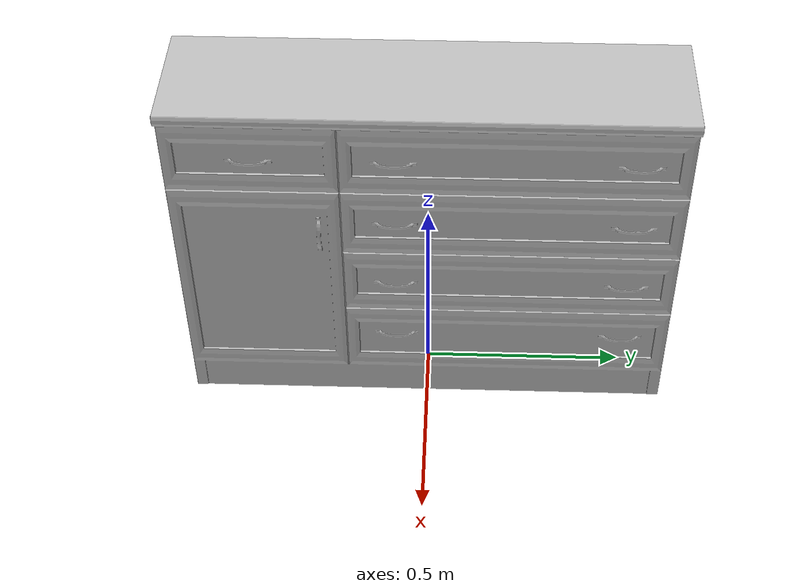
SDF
<?xml version='1.0'?>
<sdf version='1.4'>
  <model name='129'>
    <pose>0 0 0 0 0 0</pose>
    <static>true</static>
    <link name='link'>
      <collision name='collision'>
        <pose>0 0 0 0 0 0</pose>
        <geometry>
          <box>
            <size>0.304375 1.2 2</size>
          </box>
        </geometry>
      </collision>
      <visual name='visual'>
        <pose>0 0 0 0 0 0</pose>
        <geometry>
          <mesh><uri>model://129/129.dae</uri></mesh>
        </geometry>
      </visual>
    </link>
  </model>
</sdf>
